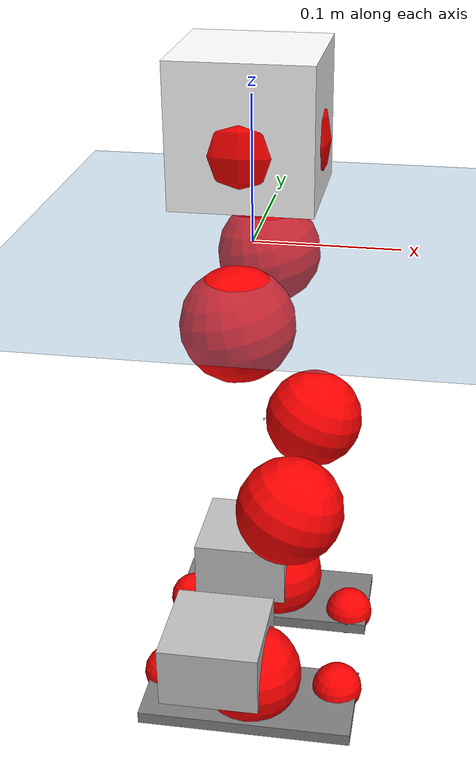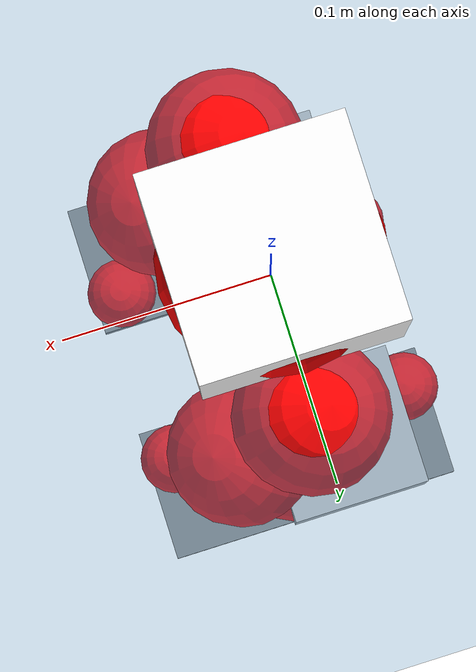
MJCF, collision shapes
<mujoco model="pi_12dof_release_v1">
  <compiler angle="radian" assetdir="assets" balanceinertia="true" inertiafromgeom="false"/>

  <option timestep="0.005" density="1.2" viscosity="2e-05"/>

  <size nkey="1"/>

  <visual>
    <quality shadowsize="8192"/>
    <map shadowclip="0.5"/>
  </visual>

  <default>
    <default class="/">
      <joint armature="0.01" damping="0.01" frictionloss="0.01"/>
      <geom contype="0" conaffinity="0" group="1" solref="-1000 -80"/>
      <site size="0.01 0.005 0.005" group="5"/>
      <general forcelimited="true" biastype="affine" gainprm="20" biasprm="0 -20 -0.5"/>
      <default class="foot">
        <geom size="0.0845 0.036 0.005" type="box" condim="6" group="4" priority="1" friction="0.9 0.2 0.2" solimp="0.015 1 0.005"/>
      </default>
      <default class="reward_collision_sphere">
        <geom group="5" rgba="1 0 0 1"/>
      </default>
    </default>
  </default>

  <asset>
    <texture type="skybox" colorspace="auto" name="//unnamed_texture_0" builtin="gradient" rgb1="0.95 0.95 0.95" rgb2="0.95 0.95 0.95" width="100" height="600"/>
    <texture type="2d" colorspace="auto" name="texplane" builtin="checker" rgb1="0.345 0.575 0.748" rgb2="0.345 0.575 0.748" markrgb="1 1 1" width="512" height="512"/>
    <material name="MatPlane" class="/" texture="texplane" texuniform="true" texrepeat="2 2" specular="0.9"/>
    <mesh name="baselink_1" class="/" file="baselink_1.STL"/>
    <mesh name="r_hip_pitch_link" class="/" file="r_hip_pitch_link.STL"/>
    <mesh name="r_hip_roll_link" class="/" file="r_hip_roll_link.STL"/>
    <mesh name="r_thigh_link" class="/" file="r_thigh_link.STL"/>
    <mesh name="r_calf_link" class="/" file="r_calf_link.STL"/>
    <mesh name="r_ankle_pitch_link" class="/" file="r_ankle_pitch_link.STL"/>
    <mesh name="r_ankle_roll_link" class="/" file="r_ankle_roll_link.STL"/>
    <mesh name="l_hip_pitch_link" class="/" file="l_hip_pitch_link.STL"/>
    <mesh name="l_hip_roll_link" class="/" file="l_hip_roll_link.STL"/>
    <mesh name="l_thigh_link" class="/" file="l_thigh_link.STL"/>
    <mesh name="l_calf_link" class="/" file="l_calf_link.STL"/>
    <mesh name="l_ankle_pitch_link" class="/" file="l_ankle_pitch_link.STL"/>
    <mesh name="l_ankle_roll_link" class="/" file="l_ankle_roll_link.STL"/>
  </asset>

  <worldbody>
    <geom name="floor" class="/" size="100 100 0.125" type="plane" group="0" material="MatPlane"/>
    <light name="toplight_shadow" class="/" pos="0 0 5" dir="0.0990148 0.0990148 -0.990148" type="directional" ambient="0.04 0.04 0.04" diffuse="0.55 0.55 0.55" specular="0.12 0.12 0.12"/>
    <light name="toplight_fill" class="/" pos="0 0 5" dir="0.0990148 0.0990148 -0.990148" type="directional" castshadow="false" ambient="0.04 0.04 0.04" diffuse="0.3 0.3 0.3" specular="0.08 0.08 0.08"/>
    <body name="trunk" pos="-0.000213779 -3.36584e-05 0.000838992" quat="1 -1.6268e-05 -7.64153e-06 4.7782e-06">
      <inertial pos="0.00284072 -0.000789691 0.040473" quat="0.695332 0.00967201 0.00937763 0.718562" mass="1.81528" diaginertia="0.00855136 0.00394299 0.00453779"/>
      <joint name="//unnamed_joint_0" type="free"/>
      <geom name="//unnamed_geom_1" class="/" type="mesh" density="0" rgba="1 1 1 1" mesh="baselink_1"/>
      <geom name="//unnamed_geom_2" class="/" size="0.0473394 0.0473394 0.0473394" pos="0 0 0.0813926" type="box" rgba="1 1 1 1"/>
      <geom name="//unnamed_geom_3" class="reward_collision_sphere" size="0.0520733" pos="0 0 0.0712186"/>
      <site name="imu" class="/" pos="-0.00339861 -0.000980197 -0.000658763" size="0.00946788"/>
      <camera name="track" class="/" pos="0 -1.69558 0" quat="0.707107 0.707107 0 0" mode="trackcom"/>
      <camera name="ego_camera" class="/" pos="0.0731374 0 0.183133" quat="-0.5 -0.5 0.5 0.5"/>
      <body name="r_hip_pitch_link" pos="0.00109114 -0.0194816 -0.033359" quat="0.992164 0.000236505 -0.124945 -3.05468e-05">
        <inertial pos="0.00107813 -0.0466425 0.000230318" quat="-0.0181903 0.708387 -0.0254886 0.70513" mass="0.314371" diaginertia="9.56505e-05 4.29222e-05 9.08506e-05"/>
        <joint name="r_hip_pitch_joint" class="/" pos="0 0 0" axis="4.58549e-05 -1 -0.000462072" range="-1.74844 1.24468" armature="0.00962357" damping="0.00379295" frictionloss="0.00947684"/>
        <geom name="//unnamed_geom_4" class="/" type="mesh" density="0" rgba="0.75294 0.75294 0.75294 1" mesh="r_hip_pitch_link"/>
        <geom name="//unnamed_geom_5" class="/" size="0.000473394 0.000473394 0.000473394" type="box" rgba="0.75294 0.75294 0.75294 1"/>
        <body name="r_hip_roll_link" pos="0.000633818 -0.0467399 0.000566892" quat="1 -4.04022e-05 1.01721e-05 6.19791e-05">
          <inertial pos="-0.00189017 2.55901e-06 -0.0627609" quat="0.704743 -0.0794085 -0.0830131 0.700101" mass="0.324775" diaginertia="0.000293295 0.000121299 0.000138741"/>
          <joint name="r_hip_roll_joint" class="/" pos="0 0 0" axis="-0.999994 -0.00144086 -0.0030196" range="-0.119807 0.497417" armature="0.00966775" damping="0.00905476" frictionloss="0.00911275"/>
          <geom name="//unnamed_geom_6" class="/" type="mesh" density="0" rgba="0.75294 0.75294 0.75294 1" mesh="r_hip_roll_link"/>
          <geom name="//unnamed_geom_7" class="/" size="0.000473394 0.000473394 0.000473394" type="box" rgba="0.75294 0.75294 0.75294 1"/>
          <geom name="//unnamed_geom_8" class="reward_collision_sphere" size="0.0378715"/>
          <body name="r_thigh_link" pos="-0.000934841 0.00115656 -0.07054" quat="1 6.63318e-05 -6.58787e-05 8.10901e-05">
            <inertial pos="9.94914e-05 0.00101452 -0.0488042" quat="0.736808 0.676099 0.00177506 0.00083713" mass="0.0968615" diaginertia="0.000111368 4.15402e-05 6.33973e-05"/>
            <joint name="r_thigh_joint" class="/" pos="0 0 0" axis="-0.00287082 9.24571e-05 -0.999996" range="-0.30353 0.598686" armature="0.00964528" damping="0.00458415" frictionloss="0.00963526"/>
            <geom name="//unnamed_geom_9" class="/" type="mesh" density="0" rgba="0.75294 0.75294 0.75294 1" mesh="r_thigh_link"/>
            <geom name="//unnamed_geom_10" class="/" size="0.000473394 0.000473394 0.000473394" type="box" rgba="0.75294 0.75294 0.75294 1"/>
            <body name="r_calf_link" pos="0.000428208 -0.00228909 -0.0716956" quat="0.947678 9.89021e-05 0.319227 -0.000219122">
              <inertial pos="-0.000597278 -0.000701278 -0.0713067" quat="0.999986 -0.0021713 0.000574385 0.00478781" mass="0.679057" diaginertia="0.00308949 0.00149908 0.00018821"/>
              <joint name="r_calf_joint" class="/" pos="0 0 0" axis="0.00401802 -0.999992 0.000377202" range="-1.64506 0.630691" armature="0.00989422" damping="0.0036137" frictionloss="0.00979718"/>
              <geom name="//unnamed_geom_11" class="/" type="mesh" density="0" rgba="0.75294 0.75294 0.75294 1" mesh="r_calf_link"/>
              <geom name="//unnamed_geom_12" class="/" size="0.000473394 0.000473394 0.000473394" type="box" rgba="0.75294 0.75294 0.75294 1"/>
              <geom name="//unnamed_geom_13" class="reward_collision_sphere" size="0.0378715"/>
              <body name="r_ankle_pitch_link" pos="0.000581092 0.00181918 -0.141832" quat="0.980063 -7.04276e-05 -0.198689 3.12194e-05">
                <inertial pos="0.00470081 0.00335412 -4.86866e-05" quat="0.00261124 0.707748 -0.0029393 0.706454" mass="0.150036" diaginertia="0.000272927 9.68464e-05 0.000130688"/>
                <joint name="r_ankle_pitch_joint" class="/" pos="0 0 0" axis="2.72827e-05 -1 2.94824e-05" stiffness="0.000572623" range="-1.30706 0.510871" armature="0.00927319" damping="0.00434533" frictionloss="0.00950228"/>
                <geom name="//unnamed_geom_14" class="/" type="mesh" density="0" rgba="0.75294 0.75294 0.75294 1" mesh="r_ankle_pitch_link"/>
                <geom name="//unnamed_geom_15" class="/" size="0.0369247 0.0378715 0.0236697" type="box" rgba="0.75294 0.75294 0.75294 1"/>
                <body name="r_ankle_roll_link" pos="0.074093 0.00293435 -0.000252112" quat="1 -0.000119129 -1.30208e-05 9.69071e-05">
                  <inertial pos="-0.0231358 6.40076e-05 -0.014766" quat="0.557577 0.431937 0.432176 0.561927" mass="0.437978" diaginertia="0.000989534 0.000454081 0.000307262"/>
                  <joint name="r_ankle_roll_joint" class="/" pos="0 0 0" axis="-1 -0.00089894 0.000248643" range="-0.133749 0.143286" armature="0.00935587" damping="0.00309959" frictionloss="0.00934388"/>
                  <geom name="//unnamed_geom_16" class="/" type="mesh" density="0" rgba="0.75294 0.75294 0.75294 1" mesh="r_ankle_roll_link"/>
                  <geom name="//unnamed_geom_17" class="/" type="mesh" rgba="0.75294 0.75294 0.75294 1" mesh="r_ankle_roll_link"/>
                  <geom name="right_foot" class="foot" size="0.0795091 0.0353746 0.00459414" pos="-0.0497334 0 -0.044766"/>
                  <geom name="//unnamed_geom_19" class="reward_collision_sphere" size="0.0378715" pos="-0.0487582 0 -0.0203482"/>
                  <geom name="//unnamed_geom_20" class="reward_collision_sphere" size="0.0189358" pos="0.0146275 0.0169558 -0.0406963"/>
                  <geom name="//unnamed_geom_21" class="reward_collision_sphere" size="0.0189358" pos="-0.11702 0.0169558 -0.0406963"/>
                  <site name="right_foot" class="foot" pos="-0.0497334 0 -0.044766" size="0.00946788"/>
                </body>
              </body>
            </body>
          </body>
        </body>
      </body>
      <body name="l_hip_pitch_link" pos="-0.000382393 0.0190681 -0.0330561" quat="0.992181 -4.85768e-05 -0.124807 -9.41497e-06">
        <inertial pos="0.000159707 0.0454888 -0.000308707" quat="-0.0349763 0.704427 0.0315531 0.708212" mass="0.329056" diaginertia="0.000113638 4.65017e-05 0.000110409"/>
        <joint name="l_hip_pitch_joint" class="/" pos="0 0 0" axis="-9.6566e-05 0.999984 0.00558174" range="-1.24494 1.76379" armature="0.00963551" damping="0.00463891" frictionloss="0.00925967"/>
        <geom name="//unnamed_geom_22" class="/" type="mesh" density="0" rgba="0.75294 0.75294 0.75294 1" mesh="l_hip_pitch_link"/>
        <geom name="//unnamed_geom_23" class="/" size="0.000473394 0.000473394 0.000473394" type="box" rgba="0.75294 0.75294 0.75294 1"/>
        <body name="l_hip_roll_link" pos="0.00126195 0.0464845 5.86002e-05" quat="1 -4.95659e-05 4.74819e-05 -1.84839e-05">
          <inertial pos="-0.00136869 -0.000562711 -0.0628121" quat="0.699621 -0.076387 -0.0783478 0.706086" mass="0.329429" diaginertia="0.000293951 0.000122907 0.000140448"/>
          <joint name="l_hip_roll_joint" class="/" pos="0 0 0" axis="-0.999992 0.00289531 -0.00289376" range="-0.488264 0.0983611" armature="0.0095971" damping="0.00901474" frictionloss="0.00952957"/>
          <geom name="//unnamed_geom_24" class="/" type="mesh" density="0" rgba="0.75294 0.75294 0.75294 1" mesh="l_hip_roll_link"/>
          <geom name="//unnamed_geom_25" class="/" size="0.000473394 0.000473394 0.000473394" type="box" rgba="0.75294 0.75294 0.75294 1"/>
          <geom name="//unnamed_geom_26" class="reward_collision_sphere" size="0.0378715"/>
          <body name="l_thigh_link" pos="0.00102886 6.99962e-06 -0.0702346" quat="1 -2.53374e-05 -0.00011295 -0.000140917">
            <inertial pos="0.000434671 -0.00180055 -0.0480241" quat="0.673742 0.738953 0.00369217 -0.00240451" mass="0.0956609" diaginertia="0.000109736 4.14727e-05 6.25499e-05"/>
            <joint name="l_thigh_joint" class="/" pos="0 0 0" axis="0.0015464 8.40104e-05 -0.999999" stiffness="6.00009e-05" range="-0.582802 0.280136" armature="0.0090456" damping="0.00295791" frictionloss="0.00904169"/>
            <geom name="//unnamed_geom_27" class="/" type="mesh" density="0" rgba="0.75294 0.75294 0.75294 1" mesh="l_thigh_link"/>
            <geom name="//unnamed_geom_28" class="/" size="0.000473394 0.000473394 0.000473394" type="box" rgba="0.75294 0.75294 0.75294 1"/>
            <body name="l_calf_link" pos="-0.00118909 0.000152666 -0.0712299" quat="0.947639 0.000131073 0.319345 0.00024948">
              <inertial pos="7.49841e-05 0.00241876 -0.0719552" quat="0.999991 0.00219828 -0.000940446 0.00342838" mass="0.697439" diaginertia="0.0031331 0.00154519 0.000190869"/>
              <joint name="l_calf_joint" class="/" pos="0 0 0" axis="-0.00159622 0.999999 -9.29431e-05" stiffness="0.00417136" range="-0.651824 1.63286" armature="0.00960194" damping="0.00811974" frictionloss="0.00950756"/>
              <geom name="//unnamed_geom_29" class="/" type="mesh" density="0" rgba="0.75294 0.75294 0.75294 1" mesh="l_calf_link"/>
              <geom name="//unnamed_geom_30" class="/" size="0.000473394 0.000473394 0.000473394" type="box" rgba="0.75294 0.75294 0.75294 1"/>
              <geom name="//unnamed_geom_31" class="reward_collision_sphere" size="0.0378715"/>
              <body name="l_ankle_pitch_link" pos="0.00108272 0.00158834 -0.142316" quat="0.980071 -0.000190749 -0.198649 5.75244e-05">
                <inertial pos="0.00400581 -0.00124568 0.00015486" quat="-0.00200832 0.707175 0.00204282 0.707033" mass="0.146722" diaginertia="0.000269319 9.59423e-05 0.000129963"/>
                <joint name="l_ankle_pitch_joint" class="/" pos="0 0 0" axis="-0.00330373 0.999994 -0.000998473" range="-0.507797 1.3076" armature="0.00948928" damping="0.00645846" frictionloss="0.00995956"/>
                <geom name="//unnamed_geom_32" class="/" type="mesh" density="0" rgba="0.75294 0.75294 0.75294 1" mesh="l_ankle_pitch_link"/>
                <geom name="//unnamed_geom_33" class="/" size="0.0369247 0.0378715 0.0236697" type="box" rgba="0.75294 0.75294 0.75294 1"/>
                <body name="l_ankle_roll_link" pos="0.0737631 -3.94189e-05 0.000118728" quat="1 -0.000239671 -0.000274539 -0.000182966">
                  <inertial pos="-0.02329 -0.000411884 -0.0148617" quat="0.560897 0.430093 0.432858 0.559508" mass="0.438771" diaginertia="0.00100509 0.000447659 0.000307106"/>
                  <joint name="l_ankle_roll_joint" class="/" pos="0 0 0" axis="-0.999999 0.00105522 0.00017418" range="-0.15343 0.151883" armature="0.00939924" damping="0.00811463" frictionloss="0.00925583"/>
                  <geom name="//unnamed_geom_34" class="/" type="mesh" density="0" rgba="0.75294 0.75294 0.75294 1" mesh="l_ankle_roll_link"/>
                  <geom name="//unnamed_geom_35" class="/" type="mesh" rgba="0.75294 0.75294 0.75294 1" mesh="l_ankle_roll_link"/>
                  <geom name="left_foot" class="foot" size="0.0794544 0.0356941 0.00462042" pos="-0.0497334 0 -0.044766"/>
                  <geom name="//unnamed_geom_37" class="reward_collision_sphere" size="0.0378715" pos="-0.0487582 0 -0.0203482"/>
                  <geom name="//unnamed_geom_38" class="reward_collision_sphere" size="0.0189358" pos="0.0146275 -0.0169558 -0.0406963"/>
                  <geom name="//unnamed_geom_39" class="reward_collision_sphere" size="0.0189358" pos="-0.11702 -0.0169558 -0.0406963"/>
                  <site name="left_foot" class="foot" pos="-0.0497334 0 -0.044766" size="0.00946788"/>
                </body>
              </body>
            </body>
          </body>
        </body>
      </body>
    </body>
  </worldbody>

  <contact>
    <pair class="/" geom1="floor" geom2="right_foot" name="//unnamed_contact_1"/>
    <pair class="/" geom1="floor" geom2="left_foot" name="//unnamed_contact_0"/>
  </contact>

  <actuator>
    <general name="r_hip_pitch_joint" class="/" joint="r_hip_pitch_joint" forcerange="-19.8468 19.8468" gainprm="18.9302" biasprm="0 -18.9302 -0.479051"/>
    <general name="r_hip_roll_joint" class="/" joint="r_hip_roll_joint" forcerange="-20.1969 20.1969" gainprm="18.9302" biasprm="0 -18.9302 -0.479051"/>
    <general name="r_thigh_joint" class="/" joint="r_thigh_joint" forcerange="-19.4086 19.4086" gainprm="18.9302" biasprm="0 -18.9302 -0.479051"/>
    <general name="r_calf_joint" class="/" joint="r_calf_joint" forcerange="-19.7853 19.7853" gainprm="18.9302" biasprm="0 -18.9302 -0.479051"/>
    <general name="r_ankle_pitch_joint" class="/" joint="r_ankle_pitch_joint" forcerange="-20.1796 20.1796" gainprm="18.9302" biasprm="0 -18.9302 -0.479051"/>
    <general name="r_ankle_roll_joint" class="/" joint="r_ankle_roll_joint" forcerange="-19.8009 19.8009" gainprm="18.9302" biasprm="0 -18.9302 -0.479051"/>
    <general name="l_hip_pitch_joint" class="/" joint="l_hip_pitch_joint" forcerange="-19.7207 19.7207" gainprm="18.9302" biasprm="0 -18.9302 -0.479051"/>
    <general name="l_hip_roll_joint" class="/" joint="l_hip_roll_joint" forcerange="-20.5261 20.5261" gainprm="18.9302" biasprm="0 -18.9302 -0.479051"/>
    <general name="l_thigh_joint" class="/" joint="l_thigh_joint" forcerange="-19.5504 19.5504" gainprm="18.9302" biasprm="0 -18.9302 -0.479051"/>
    <general name="l_calf_joint" class="/" joint="l_calf_joint" forcerange="-20.5434 20.5434" gainprm="18.9302" biasprm="0 -18.9302 -0.479051"/>
    <general name="l_ankle_pitch_joint" class="/" joint="l_ankle_pitch_joint" forcerange="-19.4603 19.4603" gainprm="18.9302" biasprm="0 -18.9302 -0.479051"/>
    <general name="l_ankle_roll_joint" class="/" joint="l_ankle_roll_joint" forcerange="-20.0034 20.0034" gainprm="18.9302" biasprm="0 -18.9302 -0.479051"/>
  </actuator>

  <sensor>
    <gyro site="imu" name="imu_angular_velocity"/>
    <velocimeter site="imu" name="imu_linear_velocity"/>
    <framelinvel objtype="site" objname="left_foot" name="left_foot_global_linear_velocity"/>
    <framelinvel objtype="site" objname="right_foot" name="right_foot_global_linear_velocity"/>
  </sensor>

  <keyframe>
    <key name="home" qpos="0 0 0.291 1 0 0 0 0.4 0 0 -0.8 0.4 0 -0.4 0 0 0.8 -0.4 0"/>
  </keyframe>
</mujoco>
